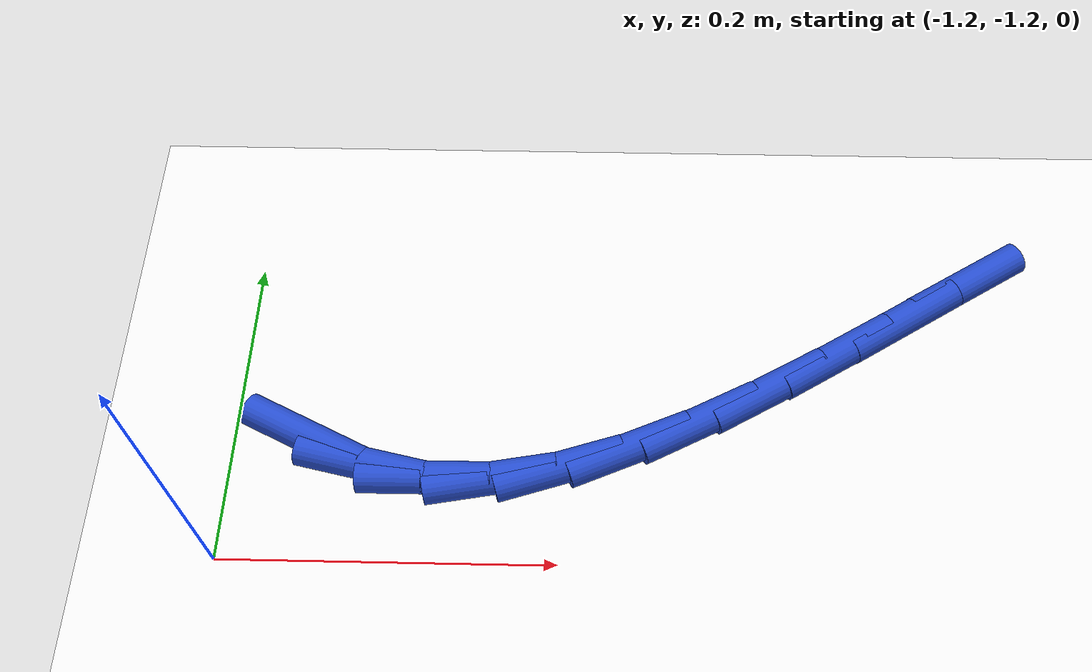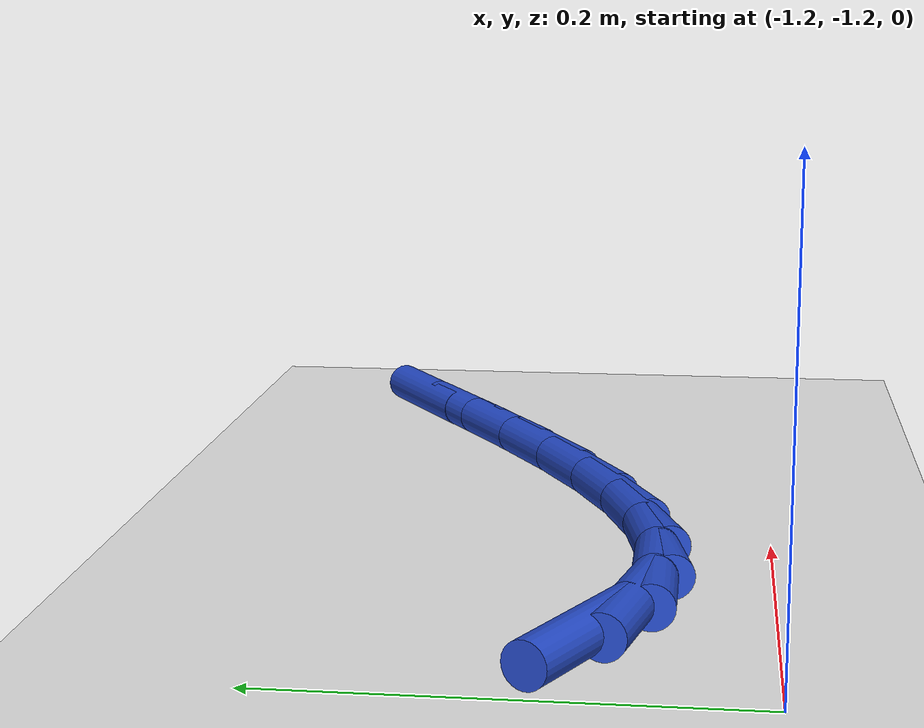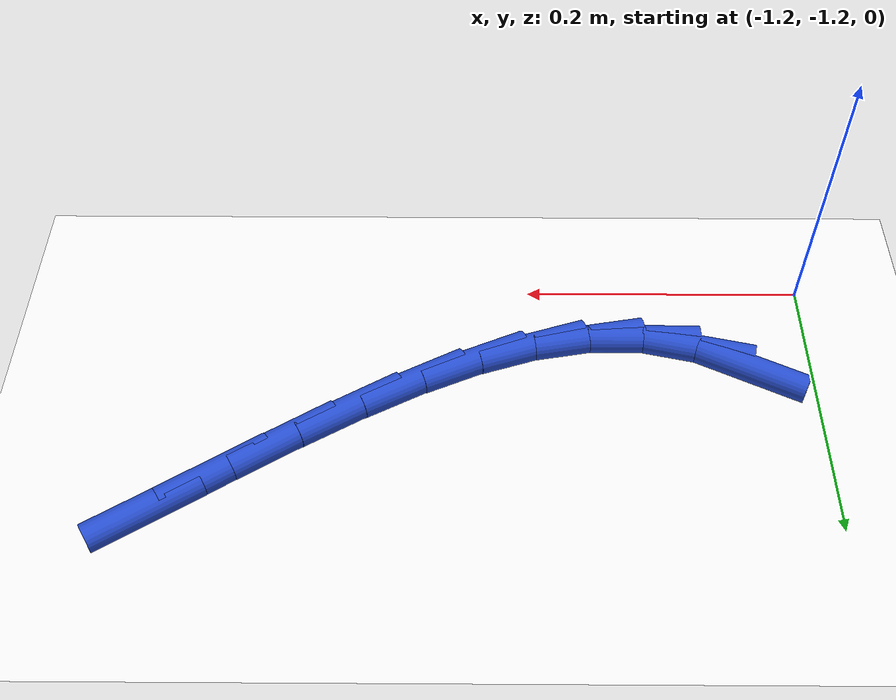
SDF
<sdf version="1.6">
 <world name="default">
  <model name="ground_plane">
   <static>1</static>
   <link name="link">
    <collision name="collision">
     <geometry><plane><normal>0 0 1</normal><size>100 100</size></plane></geometry>
     <surface><friction><ode><mu>100</mu><mu2>50</mu2></ode></friction></surface>
    </collision>
    <visual name="visual">
     <cast_shadows>0</cast_shadows>
     <geometry><plane><normal>0 0 1</normal><size>100 100</size></plane></geometry>
     <material>
      <script><uri>file://media/materials/scripts/gazebo.material</uri><name>Gazebo/WhiteGlow</name></script>
     </material>
    </visual>
   </link>
  </model>
  <model name="line">
   <link name="link_130">
    <pose>-1.155128982981336 -1.1234267382447014 0.01 0 1.57 -0.455393367507393</pose>
    <collision name="collision">
     <geometry><cylinder><radius>0.01</radius><length>0.08</length></cylinder></geometry>
    </collision>
    <visual name="visual">
     <material>
      <script><name>Gazebo/Blue</name><uri>file://media/materials/scripts/gazebo.material</uri></script>
     </material>
     <geometry><cylinder><radius>0.01</radius><length>0.08</length></cylinder></geometry>
    </visual>
   </link>
   <link name="link_131">
    <pose>-1.1188486774202306 -1.14119408815656 0.01 0 1.57 -0.22228846645202519</pose>
    <collision name="collision">
     <geometry><cylinder><radius>0.01</radius><length>0.08</length></cylinder></geometry>
    </collision>
    <visual name="visual">
     <material>
      <script><name>Gazebo/Blue</name><uri>file://media/materials/scripts/gazebo.material</uri></script>
     </material>
     <geometry><cylinder><radius>0.01</radius><length>0.08</length></cylinder></geometry>
    </visual>
   </link>
   <link name="link_132">
    <pose>-1.0810009856604266 -1.1497485581373217 0.01 0 1.57 0.00016487786862826427</pose>
    <collision name="collision">
     <geometry><cylinder><radius>0.01</radius><length>0.08</length></cylinder></geometry>
    </collision>
    <visual name="visual">
     <material>
      <script><name>Gazebo/Blue</name><uri>file://media/materials/scripts/gazebo.material</uri></script>
     </material>
     <geometry><cylinder><radius>0.01</radius><length>0.08</length></cylinder></geometry>
    </visual>
   </link>
   <link name="link_133">
    <pose>-1.0417222594536149 -1.1497420819446036 0.01 0 1.57 0.18100848906897285</pose>
    <collision name="collision">
     <geometry><cylinder><radius>0.01</radius><length>0.08</length></cylinder></geometry>
    </collision>
    <visual name="visual">
     <material>
      <script><name>Gazebo/Blue</name><uri>file://media/materials/scripts/gazebo.material</uri></script>
     </material>
     <geometry><cylinder><radius>0.01</radius><length>0.08</length></cylinder></geometry>
    </visual>
   </link>
   <link name="link_134">
    <pose>-1.0012574565223167 -1.1423365534665275 0.01 0 1.57 0.318284300048585</pose>
    <collision name="collision">
     <geometry><cylinder><radius>0.01</radius><length>0.08</length></cylinder></geometry>
    </collision>
    <visual name="visual">
     <material>
      <script><name>Gazebo/Blue</name><uri>file://media/materials/scripts/gazebo.material</uri></script>
     </material>
     <geometry><cylinder><radius>0.01</radius><length>0.08</length></cylinder></geometry>
    </visual>
   </link>
   <link name="link_135">
    <pose>-0.9598515345890529 -1.1286938665912174 0.01 0 1.57 0.4183416295278674</pose>
    <collision name="collision">
     <geometry><cylinder><radius>0.01</radius><length>0.08</length></cylinder></geometry>
    </collision>
    <visual name="visual">
     <material>
      <script><name>Gazebo/Blue</name><uri>file://media/materials/scripts/gazebo.material</uri></script>
     </material>
     <geometry><cylinder><radius>0.01</radius><length>0.08</length></cylinder></geometry>
    </visual>
   </link>
   <link name="link_136">
    <pose>-0.9177494513763449 -1.1099759152067945 0.01 0 1.57 0.48878998167046284</pose>
    <collision name="collision">
     <geometry><cylinder><radius>0.01</radius><length>0.08</length></cylinder></geometry>
    </collision>
    <visual name="visual">
     <material>
      <script><name>Gazebo/Blue</name><uri>file://media/materials/scripts/gazebo.material</uri></script>
     </material>
     <geometry><cylinder><radius>0.01</radius><length>0.08</length></cylinder></geometry>
    </visual>
   </link>
   <link name="link_137">
    <pose>-0.8751961646067153 -1.0873445932013825 0.01 0 1.57 0.5357131281647224</pose>
    <collision name="collision">
     <geometry><cylinder><radius>0.01</radius><length>0.08</length></cylinder></geometry>
    </collision>
    <visual name="visual">
     <material>
      <script><name>Gazebo/Blue</name><uri>file://media/materials/scripts/gazebo.material</uri></script>
     </material>
     <geometry><cylinder><radius>0.01</radius><length>0.08</length></cylinder></geometry>
    </visual>
   </link>
   <link name="link_138">
    <pose>-0.8324366320026847 -1.0619617944631046 0.01 0 1.57 0.5631624795457525</pose>
    <collision name="collision">
     <geometry><cylinder><radius>0.01</radius><length>0.08</length></cylinder></geometry>
    </collision>
    <visual name="visual">
     <material>
      <script><name>Gazebo/Blue</name><uri>file://media/materials/scripts/gazebo.material</uri></script>
     </material>
     <geometry><cylinder><radius>0.01</radius><length>0.08</length></cylinder></geometry>
    </visual>
   </link>
   <link name="link_139">
    <pose>-0.7897158112867746 -1.0349894128800825 0.01 0 1.57 0.5733198567688378</pose>
    <collision name="collision">
     <geometry><cylinder><radius>0.01</radius><length>0.08</length></cylinder></geometry>
    </collision>
    <visual name="visual">
     <material>
      <script><name>Gazebo/Blue</name><uri>file://media/materials/scripts/gazebo.material</uri></script>
     </material>
     <geometry><cylinder><radius>0.01</radius><length>0.08</length></cylinder></geometry>
    </visual>
   </link>
   <link name="link_140">
    <pose>-0.7472786601815061 -1.0075893423404392 0.01 0 1.57 0.5669203936584339</pose>
    <collision name="collision">
     <geometry><cylinder><radius>0.01</radius><length>0.08</length></cylinder></geometry>
    </collision>
    <visual name="visual">
     <material>
      <script><name>Gazebo/Blue</name><uri>file://media/materials/scripts/gazebo.material</uri></script>
     </material>
     <geometry><cylinder><radius>0.01</radius><length>0.08</length></cylinder></geometry>
    </visual>
   </link>
  </model>
 </world>
</sdf>
